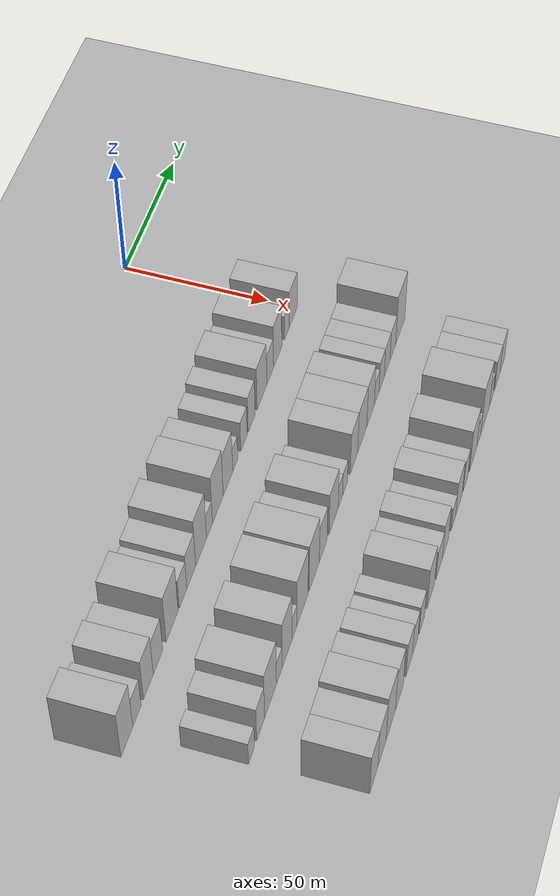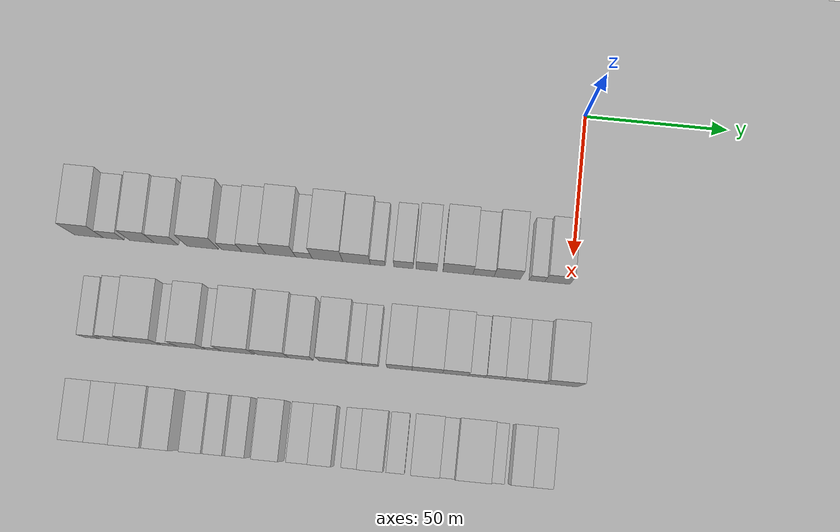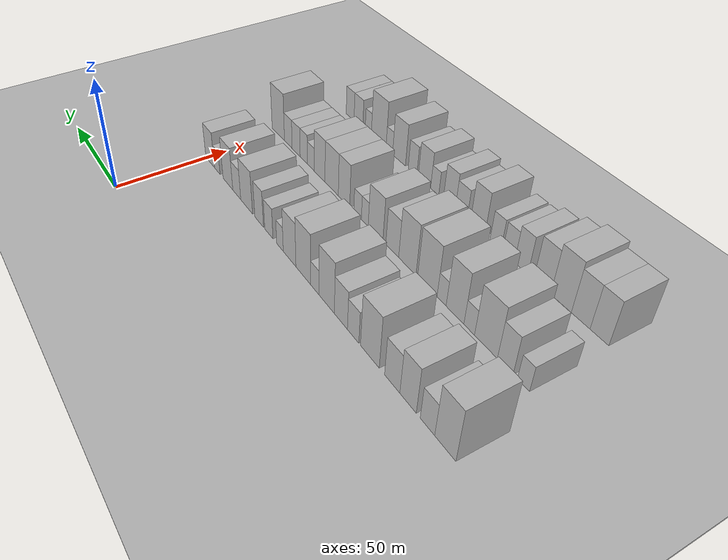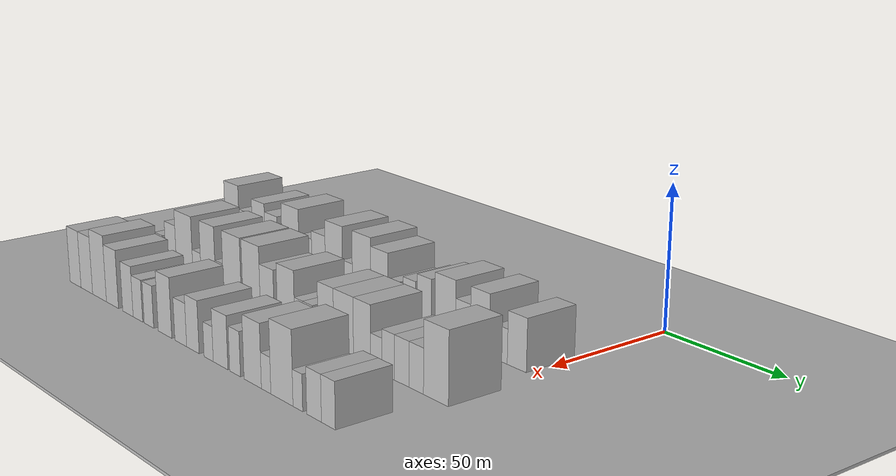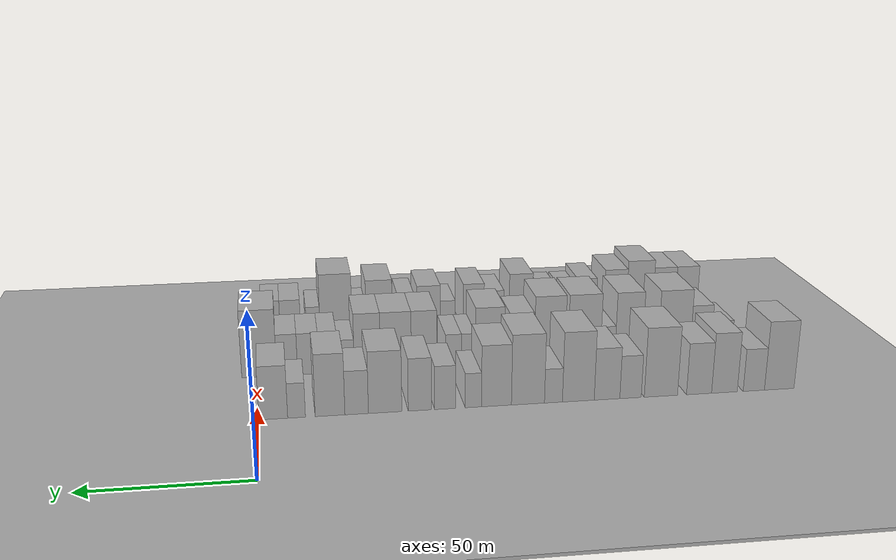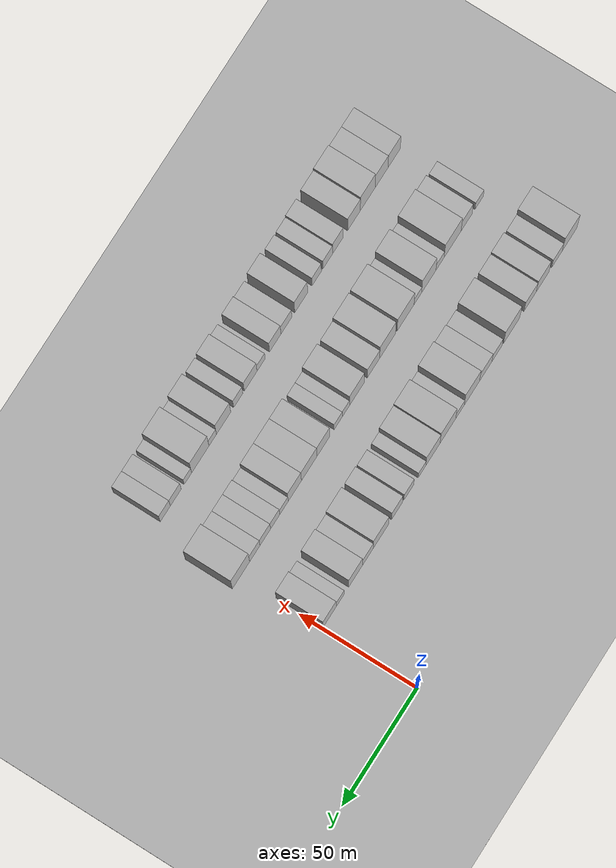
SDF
<sdf version="1.6">
 <world name="default">
  <include><name>ground_plane_1</name><uri>model://HANNAS_ground_plane</uri></include>
  <include>
   <name>ground_plane_2</name>
   <uri>model://HANNAS_ground_plane</uri>
   <pose>100 0 0  0 0 0</pose>
  </include>
  <model name="building_19">
   <static>1</static>
   <pose>50.0000 -167.9852 0 0.000000 0.000000 0.000000</pose>
   <link name="link">
    <pose>0 0 12.00 0 0 0</pose>
    <collision name="collision"><geometry><box><size>20.0000 10.0853 24.0000</size></box></geometry></collision>
    <visual name="visual">
     <cast_shadows>0</cast_shadows>
     <geometry><box><size>20.0000 10.0853 24.0000</size></box></geometry>
     <material>
      <script>
       <uri>model://HANNAS_wall/materials/scripts</uri>
       <uri>model://HANNAS_wall/materials/textures</uri>
       <name>vrc/HANNAS_wall</name>
      </script>
     </material>
    </visual>
   </link>
  </model>
  <model name="building_20">
   <static>1</static>
   <pose>50.0000 -159.3346 0 0.000000 0.000000 0.000000</pose>
   <link name="link">
    <pose>0 0 7.50 0 0 0</pose>
    <collision name="collision"><geometry><box><size>20.0000 7.2160 15.0000</size></box></geometry></collision>
    <visual name="visual">
     <cast_shadows>0</cast_shadows>
     <geometry><box><size>20.0000 7.2160 15.0000</size></box></geometry>
     <material>
      <script>
       <uri>model://HANNAS_wall/materials/scripts</uri>
       <uri>model://HANNAS_wall/materials/textures</uri>
       <name>vrc/HANNAS_wall</name>
      </script>
     </material>
    </visual>
   </link>
  </model>
  <model name="building_21">
   <static>1</static>
   <pose>50.0000 -149.4013 0 0.000000 0.000000 0.000000</pose>
   <link name="link">
    <pose>0 0 10.50 0 0 0</pose>
    <collision name="collision"><geometry><box><size>20.0000 8.6504 21.0000</size></box></geometry></collision>
    <visual name="visual">
     <cast_shadows>0</cast_shadows>
     <geometry><box><size>20.0000 8.6504 21.0000</size></box></geometry>
     <material>
      <script>
       <uri>model://HANNAS_wall/materials/scripts</uri>
       <uri>model://HANNAS_wall/materials/textures</uri>
       <name>vrc/HANNAS_wall</name>
      </script>
     </material>
    </visual>
   </link>
  </model>
  <model name="building_22">
   <static>1</static>
   <pose>50.0000 -140.8752 0 0.000000 0.000000 0.000000</pose>
   <link name="link">
    <pose>0 0 9.00 0 0 0</pose>
    <collision name="collision"><geometry><box><size>20.0000 8.4019 18.0000</size></box></geometry></collision>
    <visual name="visual">
     <cast_shadows>0</cast_shadows>
     <geometry><box><size>20.0000 8.4019 18.0000</size></box></geometry>
     <material>
      <script>
       <uri>model://HANNAS_wall/materials/scripts</uri>
       <uri>model://HANNAS_wall/materials/textures</uri>
       <name>vrc/HANNAS_wall</name>
      </script>
     </material>
    </visual>
   </link>
  </model>
  <model name="building_23">
   <static>1</static>
   <pose>50.0000 -128.1506 0 0.000000 0.000000 0.000000</pose>
   <link name="link">
    <pose>0 0 12.00 0 0 0</pose>
    <collision name="collision"><geometry><box><size>20.0000 11.0474 24.0000</size></box></geometry></collision>
    <visual name="visual">
     <cast_shadows>0</cast_shadows>
     <geometry><box><size>20.0000 11.0474 24.0000</size></box></geometry>
     <material>
      <script>
       <uri>model://HANNAS_wall/materials/scripts</uri>
       <uri>model://HANNAS_wall/materials/textures</uri>
       <name>vrc/HANNAS_wall</name>
      </script>
     </material>
    </visual>
   </link>
  </model>
  <model name="building_24">
   <static>1</static>
   <pose>50.0000 -118.1010 0 0.000000 0.000000 0.000000</pose>
   <link name="link">
    <pose>0 0 7.50 0 0 0</pose>
    <collision name="collision"><geometry><box><size>20.0000 7.0517 15.0000</size></box></geometry></collision>
    <visual name="visual">
     <cast_shadows>0</cast_shadows>
     <geometry><box><size>20.0000 7.0517 15.0000</size></box></geometry>
     <material>
      <script>
       <uri>model://HANNAS_wall/materials/scripts</uri>
       <uri>model://HANNAS_wall/materials/textures</uri>
       <name>vrc/HANNAS_wall</name>
      </script>
     </material>
    </visual>
   </link>
  </model>
  <model name="building_25">
   <static>1</static>
   <pose>50.0000 -110.3746 0 0.000000 0.000000 0.000000</pose>
   <link name="link">
    <pose>0 0 9.00 0 0 0</pose>
    <collision name="collision"><geometry><box><size>20.0000 8.4012 18.0000</size></box></geometry></collision>
    <visual name="visual">
     <cast_shadows>0</cast_shadows>
     <geometry><box><size>20.0000 8.4012 18.0000</size></box></geometry>
     <material>
      <script>
       <uri>model://HANNAS_wall/materials/scripts</uri>
       <uri>model://HANNAS_wall/materials/textures</uri>
       <name>vrc/HANNAS_wall</name>
      </script>
     </material>
    </visual>
   </link>
  </model>
  <model name="building_26">
   <static>1</static>
   <pose>50.0000 -100.9878 0 0.000000 0.000000 0.000000</pose>
   <link name="link">
    <pose>0 0 12.00 0 0 0</pose>
    <collision name="collision"><geometry><box><size>20.0000 10.3724 24.0000</size></box></geometry></collision>
    <visual name="visual">
     <cast_shadows>0</cast_shadows>
     <geometry><box><size>20.0000 10.3724 24.0000</size></box></geometry>
     <material>
      <script>
       <uri>model://HANNAS_wall/materials/scripts</uri>
       <uri>model://HANNAS_wall/materials/textures</uri>
       <name>vrc/HANNAS_wall</name>
      </script>
     </material>
    </visual>
   </link>
  </model>
  <model name="building_27">
   <static>1</static>
   <pose>50.0000 -92.8949 0 0.000000 0.000000 0.000000</pose>
   <link name="link">
    <pose>0 0 6.00 0 0 0</pose>
    <collision name="collision"><geometry><box><size>20.0000 5.8134 12.0000</size></box></geometry></collision>
    <visual name="visual">
     <cast_shadows>0</cast_shadows>
     <geometry><box><size>20.0000 5.8134 12.0000</size></box></geometry>
     <material>
      <script>
       <uri>model://HANNAS_wall/materials/scripts</uri>
       <uri>model://HANNAS_wall/materials/textures</uri>
       <name>vrc/HANNAS_wall</name>
      </script>
     </material>
    </visual>
   </link>
  </model>
  <model name="building_28">
   <static>1</static>
   <pose>50.0000 -84.6615 0 0.000000 0.000000 0.000000</pose>
   <link name="link">
    <pose>0 0 12.00 0 0 0</pose>
    <collision name="collision"><geometry><box><size>20.0000 10.6533 24.0000</size></box></geometry></collision>
    <visual name="visual">
     <cast_shadows>0</cast_shadows>
     <geometry><box><size>20.0000 10.6533 24.0000</size></box></geometry>
     <material>
      <script>
       <uri>model://HANNAS_wall/materials/scripts</uri>
       <uri>model://HANNAS_wall/materials/textures</uri>
       <name>vrc/HANNAS_wall</name>
      </script>
     </material>
    </visual>
   </link>
  </model>
  <model name="building_29">
   <static>1</static>
   <pose>50.0000 -74.5359 0 0.000000 0.000000 0.000000</pose>
   <link name="link">
    <pose>0 0 10.50 0 0 0</pose>
    <collision name="collision"><geometry><box><size>20.0000 9.5979 21.0000</size></box></geometry></collision>
    <visual name="visual">
     <cast_shadows>0</cast_shadows>
     <geometry><box><size>20.0000 9.5979 21.0000</size></box></geometry>
     <material>
      <script>
       <uri>model://HANNAS_wall/materials/scripts</uri>
       <uri>model://HANNAS_wall/materials/textures</uri>
       <name>vrc/HANNAS_wall</name>
      </script>
     </material>
    </visual>
   </link>
  </model>
  <model name="building_30">
   <static>1</static>
   <pose>50.0000 -67.1546 0 0.000000 0.000000 0.000000</pose>
   <link name="link">
    <pose>0 0 6.00 0 0 0</pose>
    <collision name="collision"><geometry><box><size>20.0000 5.1647 12.0000</size></box></geometry></collision>
    <visual name="visual">
     <cast_shadows>0</cast_shadows>
     <geometry><box><size>20.0000 5.1647 12.0000</size></box></geometry>
     <material>
      <script>
       <uri>model://HANNAS_wall/materials/scripts</uri>
       <uri>model://HANNAS_wall/materials/textures</uri>
       <name>vrc/HANNAS_wall</name>
      </script>
     </material>
    </visual>
   </link>
  </model>
  <model name="building_31">
   <static>1</static>
   <pose>50.0000 -58.2262 0 0.000000 0.000000 0.000000</pose>
   <link name="link">
    <pose>0 0 7.50 0 0 0</pose>
    <collision name="collision"><geometry><box><size>20.0000 6.6921 15.0000</size></box></geometry></collision>
    <visual name="visual">
     <cast_shadows>0</cast_shadows>
     <geometry><box><size>20.0000 6.6921 15.0000</size></box></geometry>
     <material>
      <script>
       <uri>model://HANNAS_wall/materials/scripts</uri>
       <uri>model://HANNAS_wall/materials/textures</uri>
       <name>vrc/HANNAS_wall</name>
      </script>
     </material>
    </visual>
   </link>
  </model>
  <model name="building_32">
   <static>1</static>
   <pose>50.0000 -50.2246 0 0.000000 0.000000 0.000000</pose>
   <link name="link">
    <pose>0 0 9.00 0 0 0</pose>
    <collision name="collision"><geometry><box><size>20.0000 7.3111 18.0000</size></box></geometry></collision>
    <visual name="visual">
     <cast_shadows>0</cast_shadows>
     <geometry><box><size>20.0000 7.3111 18.0000</size></box></geometry>
     <material>
      <script>
       <uri>model://HANNAS_wall/materials/scripts</uri>
       <uri>model://HANNAS_wall/materials/textures</uri>
       <name>vrc/HANNAS_wall</name>
      </script>
     </material>
    </visual>
   </link>
  </model>
  <model name="building_33">
   <static>1</static>
   <pose>50.0000 -39.3509 0 0.000000 0.000000 0.000000</pose>
   <link name="link">
    <pose>0 0 10.50 0 0 0</pose>
    <collision name="collision"><geometry><box><size>20.0000 10.4364 21.0000</size></box></geometry></collision>
    <visual name="visual">
     <cast_shadows>0</cast_shadows>
     <geometry><box><size>20.0000 10.4364 21.0000</size></box></geometry>
     <material>
      <script>
       <uri>model://HANNAS_wall/materials/scripts</uri>
       <uri>model://HANNAS_wall/materials/textures</uri>
       <name>vrc/HANNAS_wall</name>
      </script>
     </material>
    </visual>
   </link>
  </model>
  <model name="building_34">
   <static>1</static>
   <pose>50.0000 -30.4850 0 0.000000 0.000000 0.000000</pose>
   <link name="link">
    <pose>0 0 7.50 0 0 0</pose>
    <collision name="collision"><geometry><box><size>20.0000 7.2954 15.0000</size></box></geometry></collision>
    <visual name="visual">
     <cast_shadows>0</cast_shadows>
     <geometry><box><size>20.0000 7.2954 15.0000</size></box></geometry>
     <material>
      <script>
       <uri>model://HANNAS_wall/materials/scripts</uri>
       <uri>model://HANNAS_wall/materials/textures</uri>
       <name>vrc/HANNAS_wall</name>
      </script>
     </material>
    </visual>
   </link>
  </model>
  <model name="building_35">
   <static>1</static>
   <pose>50.0000 -22.2513 0 0.000000 0.000000 0.000000</pose>
   <link name="link">
    <pose>0 0 10.50 0 0 0</pose>
    <collision name="collision"><geometry><box><size>20.0000 9.1720 21.0000</size></box></geometry></collision>
    <visual name="visual">
     <cast_shadows>0</cast_shadows>
     <geometry><box><size>20.0000 9.1720 21.0000</size></box></geometry>
     <material>
      <script>
       <uri>model://HANNAS_wall/materials/scripts</uri>
       <uri>model://HANNAS_wall/materials/textures</uri>
       <name>vrc/HANNAS_wall</name>
      </script>
     </material>
    </visual>
   </link>
  </model>
  <model name="building_36">
   <static>1</static>
   <pose>50.0000 -11.9494 0 0.000000 0.000000 0.000000</pose>
   <link name="link">
    <pose>0 0 6.00 0 0 0</pose>
    <collision name="collision"><geometry><box><size>20.0000 5.4317 12.0000</size></box></geometry></collision>
    <visual name="visual">
     <cast_shadows>0</cast_shadows>
     <geometry><box><size>20.0000 5.4317 12.0000</size></box></geometry>
     <material>
      <script>
       <uri>model://HANNAS_wall/materials/scripts</uri>
       <uri>model://HANNAS_wall/materials/textures</uri>
       <name>vrc/HANNAS_wall</name>
      </script>
     </material>
    </visual>
   </link>
  </model>
  <model name="building_37">
   <static>1</static>
   <pose>50.0000 -4.8542 0 0.000000 0.000000 0.000000</pose>
   <link name="link">
    <pose>0 0 9.00 0 0 0</pose>
    <collision name="collision"><geometry><box><size>20.0000 8.7588 18.0000</size></box></geometry></collision>
    <visual name="visual">
     <cast_shadows>0</cast_shadows>
     <geometry><box><size>20.0000 8.7588 18.0000</size></box></geometry>
     <material>
      <script>
       <uri>model://HANNAS_wall/materials/scripts</uri>
       <uri>model://HANNAS_wall/materials/textures</uri>
       <name>vrc/HANNAS_wall</name>
      </script>
     </material>
    </visual>
   </link>
  </model>
  <model name="building_102">
   <static>1</static>
   <pose>85.0000 -162.0179 0 0.000000 0.000000 0.000000</pose>
   <link name="link">
    <pose>0 0 6.00 0 0 0</pose>
    <collision name="collision"><geometry><box><size>20.0000 5.6670 12.0000</size></box></geometry></collision>
    <visual name="visual">
     <cast_shadows>0</cast_shadows>
     <geometry><box><size>20.0000 5.6670 12.0000</size></box></geometry>
     <material>
      <script>
       <uri>model://HANNAS_wall/materials/scripts</uri>
       <uri>model://HANNAS_wall/materials/textures</uri>
       <name>vrc/HANNAS_wall</name>
      </script>
     </material>
    </visual>
   </link>
  </model>
  <model name="building_103">
   <static>1</static>
   <pose>85.0000 -153.3922 0 0.000000 0.000000 0.000000</pose>
   <link name="link">
    <pose>0 0 9.00 0 0 0</pose>
    <collision name="collision"><geometry><box><size>20.0000 7.5845 18.0000</size></box></geometry></collision>
    <visual name="visual">
     <cast_shadows>0</cast_shadows>
     <geometry><box><size>20.0000 7.5845 18.0000</size></box></geometry>
     <material>
      <script>
       <uri>model://HANNAS_wall/materials/scripts</uri>
       <uri>model://HANNAS_wall/materials/textures</uri>
       <name>vrc/HANNAS_wall</name>
      </script>
     </material>
    </visual>
   </link>
  </model>
  <model name="building_104">
   <static>1</static>
   <pose>85.0000 -143.7992 0 0.000000 0.000000 0.000000</pose>
   <link name="link">
    <pose>0 0 12.00 0 0 0</pose>
    <collision name="collision"><geometry><box><size>20.0000 11.6013 24.0000</size></box></geometry></collision>
    <visual name="visual">
     <cast_shadows>0</cast_shadows>
     <geometry><box><size>20.0000 11.6013 24.0000</size></box></geometry>
     <material>
      <script>
       <uri>model://HANNAS_wall/materials/scripts</uri>
       <uri>model://HANNAS_wall/materials/textures</uri>
       <name>vrc/HANNAS_wall</name>
      </script>
     </material>
    </visual>
   </link>
  </model>
  <model name="building_105">
   <static>1</static>
   <pose>85.0000 -135.1825 0 0.000000 0.000000 0.000000</pose>
   <link name="link">
    <pose>0 0 6.00 0 0 0</pose>
    <collision name="collision"><geometry><box><size>20.0000 5.6321 12.0000</size></box></geometry></collision>
    <visual name="visual">
     <cast_shadows>0</cast_shadows>
     <geometry><box><size>20.0000 5.6321 12.0000</size></box></geometry>
     <material>
      <script>
       <uri>model://HANNAS_wall/materials/scripts</uri>
       <uri>model://HANNAS_wall/materials/textures</uri>
       <name>vrc/HANNAS_wall</name>
      </script>
     </material>
    </visual>
   </link>
  </model>
  <model name="building_106">
   <static>1</static>
   <pose>85.0000 -127.4810 0 0.000000 0.000000 0.000000</pose>
   <link name="link">
    <pose>0 0 12.00 0 0 0</pose>
    <collision name="collision"><geometry><box><size>20.0000 9.7708 24.0000</size></box></geometry></collision>
    <visual name="visual">
     <cast_shadows>0</cast_shadows>
     <geometry><box><size>20.0000 9.7708 24.0000</size></box></geometry>
     <material>
      <script>
       <uri>model://HANNAS_wall/materials/scripts</uri>
       <uri>model://HANNAS_wall/materials/textures</uri>
       <name>vrc/HANNAS_wall</name>
      </script>
     </material>
    </visual>
   </link>
  </model>
  <model name="building_107">
   <static>1</static>
   <pose>85.0000 -120.0042 0 0.000000 0.000000 0.000000</pose>
   <link name="link">
    <pose>0 0 6.00 0 0 0</pose>
    <collision name="collision"><geometry><box><size>20.0000 5.1828 12.0000</size></box></geometry></collision>
    <visual name="visual">
     <cast_shadows>0</cast_shadows>
     <geometry><box><size>20.0000 5.1828 12.0000</size></box></geometry>
     <material>
      <script>
       <uri>model://HANNAS_wall/materials/scripts</uri>
       <uri>model://HANNAS_wall/materials/textures</uri>
       <name>vrc/HANNAS_wall</name>
      </script>
     </material>
    </visual>
   </link>
  </model>
  <model name="building_108">
   <static>1</static>
   <pose>85.0000 -111.6673 0 0.000000 0.000000 0.000000</pose>
   <link name="link">
    <pose>0 0 12.00 0 0 0</pose>
    <collision name="collision"><geometry><box><size>20.0000 11.4910 24.0000</size></box></geometry></collision>
    <visual name="visual">
     <cast_shadows>0</cast_shadows>
     <geometry><box><size>20.0000 11.4910 24.0000</size></box></geometry>
     <material>
      <script>
       <uri>model://HANNAS_wall/materials/scripts</uri>
       <uri>model://HANNAS_wall/materials/textures</uri>
       <name>vrc/HANNAS_wall</name>
      </script>
     </material>
    </visual>
   </link>
  </model>
  <model name="building_109">
   <static>1</static>
   <pose>85.0000 -99.5013 0 0.000000 0.000000 0.000000</pose>
   <link name="link">
    <pose>0 0 12.00 0 0 0</pose>
    <collision name="collision"><geometry><box><size>20.0000 10.8409 24.0000</size></box></geometry></collision>
    <visual name="visual">
     <cast_shadows>0</cast_shadows>
     <geometry><box><size>20.0000 10.8409 24.0000</size></box></geometry>
     <material>
      <script>
       <uri>model://HANNAS_wall/materials/scripts</uri>
       <uri>model://HANNAS_wall/materials/textures</uri>
       <name>vrc/HANNAS_wall</name>
      </script>
     </material>
    </visual>
   </link>
  </model>
  <model name="building_110">
   <static>1</static>
   <pose>85.0000 -89.8886 0 0.000000 0.000000 0.000000</pose>
   <link name="link">
    <pose>0 0 9.00 0 0 0</pose>
    <collision name="collision"><geometry><box><size>20.0000 8.3845 18.0000</size></box></geometry></collision>
    <visual name="visual">
     <cast_shadows>0</cast_shadows>
     <geometry><box><size>20.0000 8.3845 18.0000</size></box></geometry>
     <material>
      <script>
       <uri>model://HANNAS_wall/materials/scripts</uri>
       <uri>model://HANNAS_wall/materials/textures</uri>
       <name>vrc/HANNAS_wall</name>
      </script>
     </material>
    </visual>
   </link>
  </model>
  <model name="building_111">
   <static>1</static>
   <pose>85.0000 -78.6477 0 0.000000 0.000000 0.000000</pose>
   <link name="link">
    <pose>0 0 10.50 0 0 0</pose>
    <collision name="collision"><geometry><box><size>20.0000 10.0974 21.0000</size></box></geometry></collision>
    <visual name="visual">
     <cast_shadows>0</cast_shadows>
     <geometry><box><size>20.0000 10.0974 21.0000</size></box></geometry>
     <material>
      <script>
       <uri>model://HANNAS_wall/materials/scripts</uri>
       <uri>model://HANNAS_wall/materials/textures</uri>
       <name>vrc/HANNAS_wall</name>
      </script>
     </material>
    </visual>
   </link>
  </model>
  <model name="building_112">
   <static>1</static>
   <pose>85.0000 -71.1833 0 0.000000 0.000000 0.000000</pose>
   <link name="link">
    <pose>0 0 6.00 0 0 0</pose>
    <collision name="collision"><geometry><box><size>20.0000 4.8314 12.0000</size></box></geometry></collision>
    <visual name="visual">
     <cast_shadows>0</cast_shadows>
     <geometry><box><size>20.0000 4.8314 12.0000</size></box></geometry>
     <material>
      <script>
       <uri>model://HANNAS_wall/materials/scripts</uri>
       <uri>model://HANNAS_wall/materials/textures</uri>
       <name>vrc/HANNAS_wall</name>
      </script>
     </material>
    </visual>
   </link>
  </model>
  <model name="building_113">
   <static>1</static>
   <pose>85.0000 -66.0208 0 0.000000 0.000000 0.000000</pose>
   <link name="link">
    <pose>0 0 6.00 0 0 0</pose>
    <collision name="collision"><geometry><box><size>20.0000 5.4936 12.0000</size></box></geometry></collision>
    <visual name="visual">
     <cast_shadows>0</cast_shadows>
     <geometry><box><size>20.0000 5.4936 12.0000</size></box></geometry>
     <material>
      <script>
       <uri>model://HANNAS_wall/materials/scripts</uri>
       <uri>model://HANNAS_wall/materials/textures</uri>
       <name>vrc/HANNAS_wall</name>
      </script>
     </material>
    </visual>
   </link>
  </model>
  <model name="building_114">
   <static>1</static>
   <pose>85.0000 -55.9657 0 0.000000 0.000000 0.000000</pose>
   <link name="link">
    <pose>0 0 10.50 0 0 0</pose>
    <collision name="collision"><geometry><box><size>20.0000 8.6166 21.0000</size></box></geometry></collision>
    <visual name="visual">
     <cast_shadows>0</cast_shadows>
     <geometry><box><size>20.0000 8.6166 21.0000</size></box></geometry>
     <material>
      <script>
       <uri>model://HANNAS_wall/materials/scripts</uri>
       <uri>model://HANNAS_wall/materials/textures</uri>
       <name>vrc/HANNAS_wall</name>
      </script>
     </material>
    </visual>
   </link>
  </model>
  <model name="building_115">
   <static>1</static>
   <pose>85.0000 -46.4165 0 0.000000 0.000000 0.000000</pose>
   <link name="link">
    <pose>0 0 10.50 0 0 0</pose>
    <collision name="collision"><geometry><box><size>20.0000 10.4817 21.0000</size></box></geometry></collision>
    <visual name="visual">
     <cast_shadows>0</cast_shadows>
     <geometry><box><size>20.0000 10.4817 21.0000</size></box></geometry>
     <material>
      <script>
       <uri>model://HANNAS_wall/materials/scripts</uri>
       <uri>model://HANNAS_wall/materials/textures</uri>
       <name>vrc/HANNAS_wall</name>
      </script>
     </material>
    </visual>
   </link>
  </model>
  <model name="building_116">
   <static>1</static>
   <pose>85.0000 -36.7361 0 0.000000 0.000000 0.000000</pose>
   <link name="link">
    <pose>0 0 10.50 0 0 0</pose>
    <collision name="collision"><geometry><box><size>20.0000 8.8791 21.0000</size></box></geometry></collision>
    <visual name="visual">
     <cast_shadows>0</cast_shadows>
     <geometry><box><size>20.0000 8.8791 21.0000</size></box></geometry>
     <material>
      <script>
       <uri>model://HANNAS_wall/materials/scripts</uri>
       <uri>model://HANNAS_wall/materials/textures</uri>
       <name>vrc/HANNAS_wall</name>
      </script>
     </material>
    </visual>
   </link>
  </model>
  <model name="building_117">
   <static>1</static>
   <pose>85.0000 -29.4316 0 0.000000 0.000000 0.000000</pose>
   <link name="link">
    <pose>0 0 6.00 0 0 0</pose>
    <collision name="collision"><geometry><box><size>20.0000 5.7299 12.0000</size></box></geometry></collision>
    <visual name="visual">
     <cast_shadows>0</cast_shadows>
     <geometry><box><size>20.0000 5.7299 12.0000</size></box></geometry>
     <material>
      <script>
       <uri>model://HANNAS_wall/materials/scripts</uri>
       <uri>model://HANNAS_wall/materials/textures</uri>
       <name>vrc/HANNAS_wall</name>
      </script>
     </material>
    </visual>
   </link>
  </model>
  <model name="building_118">
   <static>1</static>
   <pose>85.0000 -23.4868 0 0.000000 0.000000 0.000000</pose>
   <link name="link">
    <pose>0 0 7.50 0 0 0</pose>
    <collision name="collision"><geometry><box><size>20.0000 6.1596 15.0000</size></box></geometry></collision>
    <visual name="visual">
     <cast_shadows>0</cast_shadows>
     <geometry><box><size>20.0000 6.1596 15.0000</size></box></geometry>
     <material>
      <script>
       <uri>model://HANNAS_wall/materials/scripts</uri>
       <uri>model://HANNAS_wall/materials/textures</uri>
       <name>vrc/HANNAS_wall</name>
      </script>
     </material>
    </visual>
   </link>
  </model>
  <model name="building_119">
   <static>1</static>
   <pose>85.0000 -16.8671 0 0.000000 0.000000 0.000000</pose>
   <link name="link">
    <pose>0 0 7.50 0 0 0</pose>
    <collision name="collision"><geometry><box><size>20.0000 7.0799 15.0000</size></box></geometry></collision>
    <visual name="visual">
     <cast_shadows>0</cast_shadows>
     <geometry><box><size>20.0000 7.0799 15.0000</size></box></geometry>
     <material>
      <script>
       <uri>model://HANNAS_wall/materials/scripts</uri>
       <uri>model://HANNAS_wall/materials/textures</uri>
       <name>vrc/HANNAS_wall</name>
      </script>
     </material>
    </visual>
   </link>
  </model>
  <model name="building_120">
   <static>1</static>
   <pose>85.0000 -9.8595 0 0.000000 0.000000 0.000000</pose>
   <link name="link">
    <pose>0 0 7.50 0 0 0</pose>
    <collision name="collision"><geometry><box><size>20.0000 6.9353 15.0000</size></box></geometry></collision>
    <visual name="visual">
     <cast_shadows>0</cast_shadows>
     <geometry><box><size>20.0000 6.9353 15.0000</size></box></geometry>
     <material>
      <script>
       <uri>model://HANNAS_wall/materials/scripts</uri>
       <uri>model://HANNAS_wall/materials/textures</uri>
       <name>vrc/HANNAS_wall</name>
      </script>
     </material>
    </visual>
   </link>
  </model>
  <model name="building_121">
   <static>1</static>
   <pose>85.0000 -0.6195 0 0.000000 0.000000 0.000000</pose>
   <link name="link">
    <pose>0 0 12.00 0 0 0</pose>
    <collision name="collision"><geometry><box><size>20.0000 11.5448 24.0000</size></box></geometry></collision>
    <visual name="visual">
     <cast_shadows>0</cast_shadows>
     <geometry><box><size>20.0000 11.5448 24.0000</size></box></geometry>
     <material>
      <script>
       <uri>model://HANNAS_wall/materials/scripts</uri>
       <uri>model://HANNAS_wall/materials/textures</uri>
       <name>vrc/HANNAS_wall</name>
      </script>
     </material>
    </visual>
   </link>
  </model>
  <model name="building_183">
   <static>1</static>
   <pose>120.0000 -159.6218 0 0.000000 0.000000 0.000000</pose>
   <link name="link">
    <pose>0 0 10.50 0 0 0</pose>
    <collision name="collision"><geometry><box><size>20.0000 8.4527 21.0000</size></box></geometry></collision>
    <visual name="visual">
     <cast_shadows>0</cast_shadows>
     <geometry><box><size>20.0000 8.4527 21.0000</size></box></geometry>
     <material>
      <script>
       <uri>model://HANNAS_wall/materials/scripts</uri>
       <uri>model://HANNAS_wall/materials/textures</uri>
       <name>vrc/HANNAS_wall</name>
      </script>
     </material>
    </visual>
   </link>
  </model>
  <model name="building_184">
   <static>1</static>
   <pose>120.0000 -151.0255 0 0.000000 0.000000 0.000000</pose>
   <link name="link">
    <pose>0 0 10.50 0 0 0</pose>
    <collision name="collision"><geometry><box><size>20.0000 8.7398 21.0000</size></box></geometry></collision>
    <visual name="visual">
     <cast_shadows>0</cast_shadows>
     <geometry><box><size>20.0000 8.7398 21.0000</size></box></geometry>
     <material>
      <script>
       <uri>model://HANNAS_wall/materials/scripts</uri>
       <uri>model://HANNAS_wall/materials/textures</uri>
       <name>vrc/HANNAS_wall</name>
      </script>
     </material>
    </visual>
   </link>
  </model>
  <model name="building_185">
   <static>1</static>
   <pose>120.0000 -141.5658 0 0.000000 0.000000 0.000000</pose>
   <link name="link">
    <pose>0 0 12.00 0 0 0</pose>
    <collision name="collision"><geometry><box><size>20.0000 10.1796 24.0000</size></box></geometry></collision>
    <visual name="visual">
     <cast_shadows>0</cast_shadows>
     <geometry><box><size>20.0000 10.1796 24.0000</size></box></geometry>
     <material>
      <script>
       <uri>model://HANNAS_wall/materials/scripts</uri>
       <uri>model://HANNAS_wall/materials/textures</uri>
       <name>vrc/HANNAS_wall</name>
      </script>
     </material>
    </visual>
   </link>
  </model>
  <model name="building_186">
   <static>1</static>
   <pose>120.0000 -132.1538 0 0.000000 0.000000 0.000000</pose>
   <link name="link">
    <pose>0 0 10.50 0 0 0</pose>
    <collision name="collision"><geometry><box><size>20.0000 8.6445 21.0000</size></box></geometry></collision>
    <visual name="visual">
     <cast_shadows>0</cast_shadows>
     <geometry><box><size>20.0000 8.6445 21.0000</size></box></geometry>
     <material>
      <script>
       <uri>model://HANNAS_wall/materials/scripts</uri>
       <uri>model://HANNAS_wall/materials/textures</uri>
       <name>vrc/HANNAS_wall</name>
      </script>
     </material>
    </visual>
   </link>
  </model>
  <model name="building_187">
   <static>1</static>
   <pose>120.0000 -121.2024 0 0.000000 0.000000 0.000000</pose>
   <link name="link">
    <pose>0 0 9.00 0 0 0</pose>
    <collision name="collision"><geometry><box><size>20.0000 7.2582 18.0000</size></box></geometry></collision>
    <visual name="visual">
     <cast_shadows>0</cast_shadows>
     <geometry><box><size>20.0000 7.2582 18.0000</size></box></geometry>
     <material>
      <script>
       <uri>model://HANNAS_wall/materials/scripts</uri>
       <uri>model://HANNAS_wall/materials/textures</uri>
       <name>vrc/HANNAS_wall</name>
      </script>
     </material>
    </visual>
   </link>
  </model>
  <model name="building_188">
   <static>1</static>
   <pose>120.0000 -114.3021 0 0.000000 0.000000 0.000000</pose>
   <link name="link">
    <pose>0 0 7.50 0 0 0</pose>
    <collision name="collision"><geometry><box><size>20.0000 6.5424 15.0000</size></box></geometry></collision>
    <visual name="visual">
     <cast_shadows>0</cast_shadows>
     <geometry><box><size>20.0000 6.5424 15.0000</size></box></geometry>
     <material>
      <script>
       <uri>model://HANNAS_wall/materials/scripts</uri>
       <uri>model://HANNAS_wall/materials/textures</uri>
       <name>vrc/HANNAS_wall</name>
      </script>
     </material>
    </visual>
   </link>
  </model>
  <model name="building_189">
   <static>1</static>
   <pose>120.0000 -106.8576 0 0.000000 0.000000 0.000000</pose>
   <link name="link">
    <pose>0 0 7.50 0 0 0</pose>
    <collision name="collision"><geometry><box><size>20.0000 6.3466 15.0000</size></box></geometry></collision>
    <visual name="visual">
     <cast_shadows>0</cast_shadows>
     <geometry><box><size>20.0000 6.3466 15.0000</size></box></geometry>
     <material>
      <script>
       <uri>model://HANNAS_wall/materials/scripts</uri>
       <uri>model://HANNAS_wall/materials/textures</uri>
       <name>vrc/HANNAS_wall</name>
      </script>
     </material>
    </visual>
   </link>
  </model>
  <model name="building_190">
   <static>1</static>
   <pose>120.0000 -96.3093 0 0.000000 0.000000 0.000000</pose>
   <link name="link">
    <pose>0 0 10.50 0 0 0</pose>
    <collision name="collision"><geometry><box><size>20.0000 8.7500 21.0000</size></box></geometry></collision>
    <visual name="visual">
     <cast_shadows>0</cast_shadows>
     <geometry><box><size>20.0000 8.7500 21.0000</size></box></geometry>
     <material>
      <script>
       <uri>model://HANNAS_wall/materials/scripts</uri>
       <uri>model://HANNAS_wall/materials/textures</uri>
       <name>vrc/HANNAS_wall</name>
      </script>
     </material>
    </visual>
   </link>
  </model>
  <model name="building_191">
   <static>1</static>
   <pose>120.0000 -86.2497 0 0.000000 0.000000 0.000000</pose>
   <link name="link">
    <pose>0 0 7.50 0 0 0</pose>
    <collision name="collision"><geometry><box><size>20.0000 7.3692 15.0000</size></box></geometry></collision>
    <visual name="visual">
     <cast_shadows>0</cast_shadows>
     <geometry><box><size>20.0000 7.3692 15.0000</size></box></geometry>
     <material>
      <script>
       <uri>model://HANNAS_wall/materials/scripts</uri>
       <uri>model://HANNAS_wall/materials/textures</uri>
       <name>vrc/HANNAS_wall</name>
      </script>
     </material>
    </visual>
   </link>
  </model>
  <model name="building_192">
   <static>1</static>
   <pose>120.0000 -78.7277 0 0.000000 0.000000 0.000000</pose>
   <link name="link">
    <pose>0 0 9.00 0 0 0</pose>
    <collision name="collision"><geometry><box><size>20.0000 7.6748 18.0000</size></box></geometry></collision>
    <visual name="visual">
     <cast_shadows>0</cast_shadows>
     <geometry><box><size>20.0000 7.6748 18.0000</size></box></geometry>
     <material>
      <script>
       <uri>model://HANNAS_wall/materials/scripts</uri>
       <uri>model://HANNAS_wall/materials/textures</uri>
       <name>vrc/HANNAS_wall</name>
      </script>
     </material>
    </visual>
   </link>
  </model>
  <model name="building_193">
   <static>1</static>
   <pose>120.0000 -69.1584 0 0.000000 0.000000 0.000000</pose>
   <link name="link">
    <pose>0 0 6.00 0 0 0</pose>
    <collision name="collision"><geometry><box><size>20.0000 5.4638 12.0000</size></box></geometry></collision>
    <visual name="visual">
     <cast_shadows>0</cast_shadows>
     <geometry><box><size>20.0000 5.4638 12.0000</size></box></geometry>
     <material>
      <script>
       <uri>model://HANNAS_wall/materials/scripts</uri>
       <uri>model://HANNAS_wall/materials/textures</uri>
       <name>vrc/HANNAS_wall</name>
      </script>
     </material>
    </visual>
   </link>
  </model>
  <model name="building_194">
   <static>1</static>
   <pose>120.0000 -62.1364 0 0.000000 0.000000 0.000000</pose>
   <link name="link">
    <pose>0 0 9.00 0 0 0</pose>
    <collision name="collision"><geometry><box><size>20.0000 8.5804 18.0000</size></box></geometry></collision>
    <visual name="visual">
     <cast_shadows>0</cast_shadows>
     <geometry><box><size>20.0000 8.5804 18.0000</size></box></geometry>
     <material>
      <script>
       <uri>model://HANNAS_wall/materials/scripts</uri>
       <uri>model://HANNAS_wall/materials/textures</uri>
       <name>vrc/HANNAS_wall</name>
      </script>
     </material>
    </visual>
   </link>
  </model>
  <model name="building_195">
   <static>1</static>
   <pose>120.0000 -53.7860 0 0.000000 0.000000 0.000000</pose>
   <link name="link">
    <pose>0 0 7.50 0 0 0</pose>
    <collision name="collision"><geometry><box><size>20.0000 6.1204 15.0000</size></box></geometry></collision>
    <visual name="visual">
     <cast_shadows>0</cast_shadows>
     <geometry><box><size>20.0000 6.1204 15.0000</size></box></geometry>
     <material>
      <script>
       <uri>model://HANNAS_wall/materials/scripts</uri>
       <uri>model://HANNAS_wall/materials/textures</uri>
       <name>vrc/HANNAS_wall</name>
      </script>
     </material>
    </visual>
   </link>
  </model>
  <model name="building_196">
   <static>1</static>
   <pose>120.0000 -43.9476 0 0.000000 0.000000 0.000000</pose>
   <link name="link">
    <pose>0 0 10.50 0 0 0</pose>
    <collision name="collision"><geometry><box><size>20.0000 9.5565 21.0000</size></box></geometry></collision>
    <visual name="visual">
     <cast_shadows>0</cast_shadows>
     <geometry><box><size>20.0000 9.5565 21.0000</size></box></geometry>
     <material>
      <script>
       <uri>model://HANNAS_wall/materials/scripts</uri>
       <uri>model://HANNAS_wall/materials/textures</uri>
       <name>vrc/HANNAS_wall</name>
      </script>
     </material>
    </visual>
   </link>
  </model>
  <model name="building_197">
   <static>1</static>
   <pose>120.0000 -36.6240 0 0.000000 0.000000 0.000000</pose>
   <link name="link">
    <pose>0 0 6.00 0 0 0</pose>
    <collision name="collision"><geometry><box><size>20.0000 5.0907 12.0000</size></box></geometry></collision>
    <visual name="visual">
     <cast_shadows>0</cast_shadows>
     <geometry><box><size>20.0000 5.0907 12.0000</size></box></geometry>
     <material>
      <script>
       <uri>model://HANNAS_wall/materials/scripts</uri>
       <uri>model://HANNAS_wall/materials/textures</uri>
       <name>vrc/HANNAS_wall</name>
      </script>
     </material>
    </visual>
   </link>
  </model>
  <model name="building_198">
   <static>1</static>
   <pose>120.0000 -28.2819 0 0.000000 0.000000 0.000000</pose>
   <link name="link">
    <pose>0 0 12.00 0 0 0</pose>
    <collision name="collision"><geometry><box><size>20.0000 11.5935 24.0000</size></box></geometry></collision>
    <visual name="visual">
     <cast_shadows>0</cast_shadows>
     <geometry><box><size>20.0000 11.5935 24.0000</size></box></geometry>
     <material>
      <script>
       <uri>model://HANNAS_wall/materials/scripts</uri>
       <uri>model://HANNAS_wall/materials/textures</uri>
       <name>vrc/HANNAS_wall</name>
      </script>
     </material>
    </visual>
   </link>
  </model>
  <model name="building_199">
   <static>1</static>
   <pose>120.0000 -20.0083 0 0.000000 0.000000 0.000000</pose>
   <link name="link">
    <pose>0 0 6.00 0 0 0</pose>
    <collision name="collision"><geometry><box><size>20.0000 4.9538 12.0000</size></box></geometry></collision>
    <visual name="visual">
     <cast_shadows>0</cast_shadows>
     <geometry><box><size>20.0000 4.9538 12.0000</size></box></geometry>
     <material>
      <script>
       <uri>model://HANNAS_wall/materials/scripts</uri>
       <uri>model://HANNAS_wall/materials/textures</uri>
       <name>vrc/HANNAS_wall</name>
      </script>
     </material>
    </visual>
   </link>
  </model>
  <model name="building_200">
   <static>1</static>
   <pose>120.0000 -11.8843 0 0.000000 0.000000 0.000000</pose>
   <link name="link">
    <pose>0 0 7.50 0 0 0</pose>
    <collision name="collision"><geometry><box><size>20.0000 7.2942 15.0000</size></box></geometry></collision>
    <visual name="visual">
     <cast_shadows>0</cast_shadows>
     <geometry><box><size>20.0000 7.2942 15.0000</size></box></geometry>
     <material>
      <script>
       <uri>model://HANNAS_wall/materials/scripts</uri>
       <uri>model://HANNAS_wall/materials/textures</uri>
       <name>vrc/HANNAS_wall</name>
      </script>
     </material>
    </visual>
   </link>
  </model>
  <model name="building_201">
   <static>1</static>
   <pose>120.0000 -4.8733 0 0.000000 0.000000 0.000000</pose>
   <link name="link">
    <pose>0 0 7.50 0 0 0</pose>
    <collision name="collision"><geometry><box><size>20.0000 6.7276 15.0000</size></box></geometry></collision>
    <visual name="visual">
     <cast_shadows>0</cast_shadows>
     <geometry><box><size>20.0000 6.7276 15.0000</size></box></geometry>
     <material>
      <script>
       <uri>model://HANNAS_wall/materials/scripts</uri>
       <uri>model://HANNAS_wall/materials/textures</uri>
       <name>vrc/HANNAS_wall</name>
      </script>
     </material>
    </visual>
   </link>
  </model>
 </world>
</sdf>
